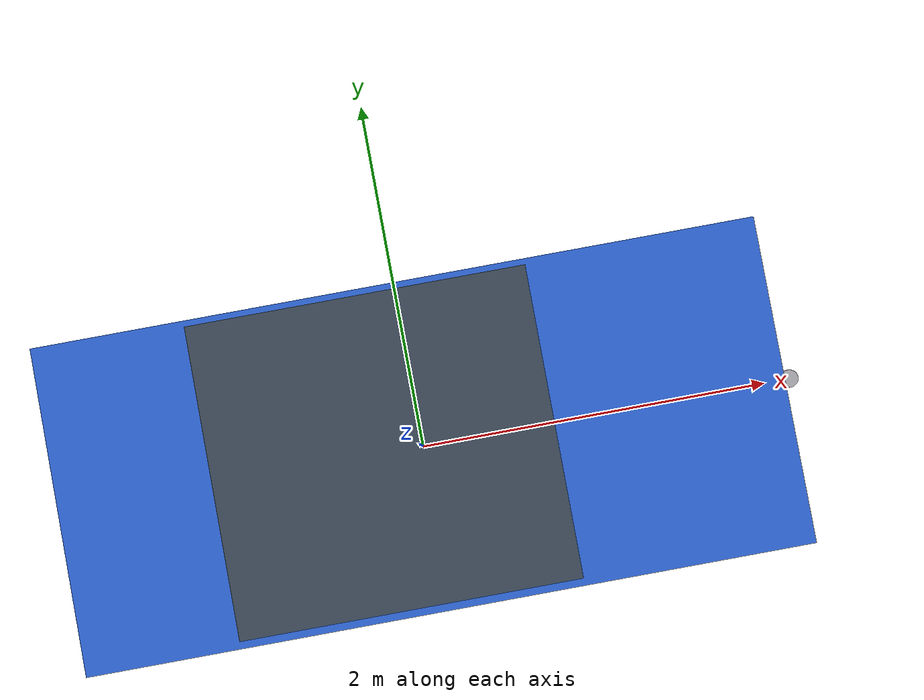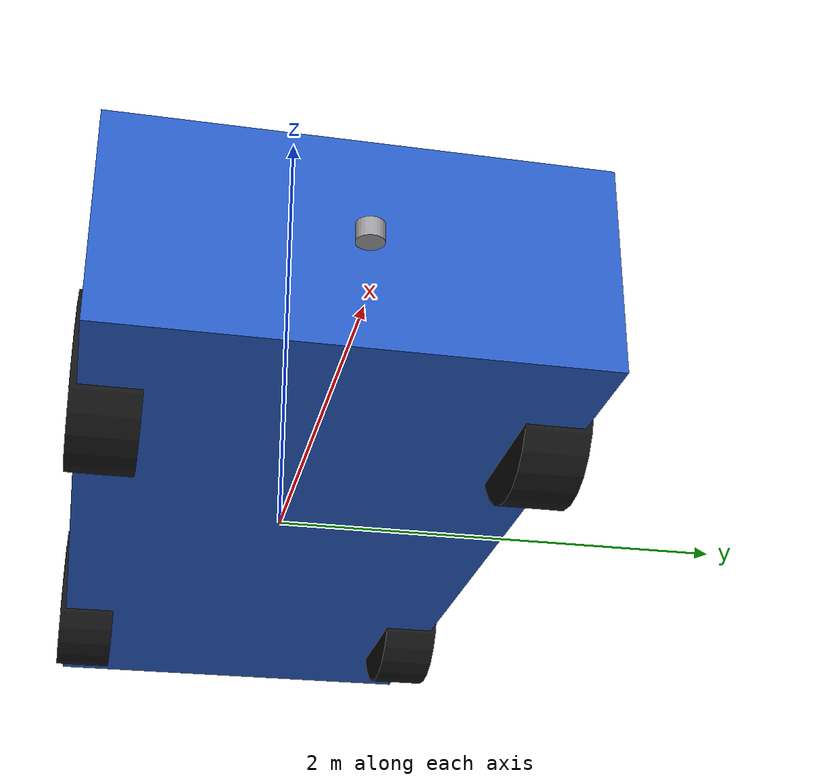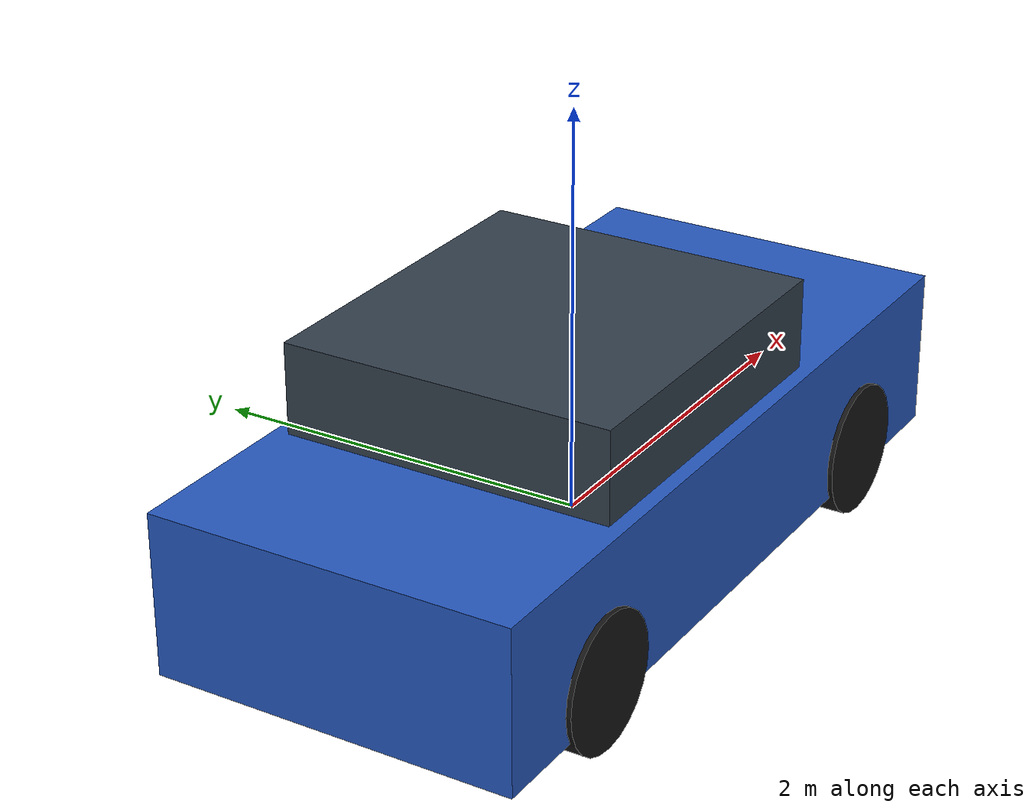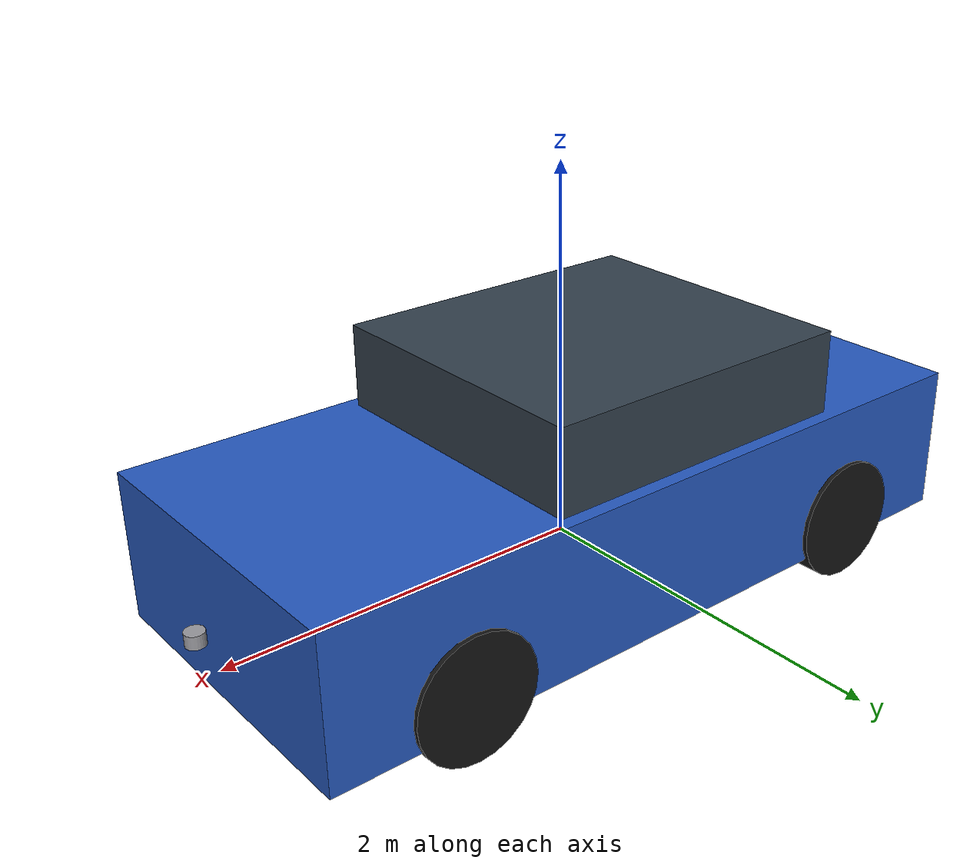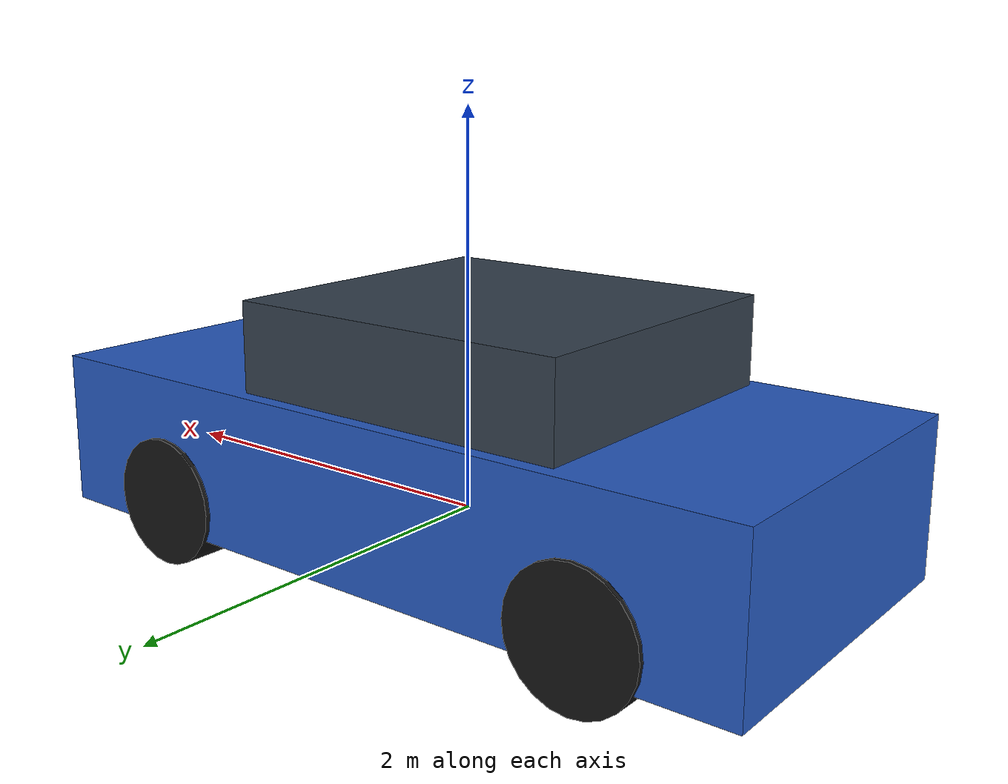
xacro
<?xml version="1.0"?>
<robot name="otonom_arac" xmlns:xacro="http://www.ros.org/wiki/xacro">

  <!-- ====================== PARAMETRELER ====================== -->
  <xacro:property name="govde_uzun"  value="4.00"/>
  <xacro:property name="govde_en"    value="1.80"/>
  <xacro:property name="govde_yuk"   value="0.80"/>
  <xacro:property name="govde_kutle" value="1200.0"/>

  <xacro:property name="dingil_mesafe" value="2.50"/>  <!-- on-arka aks -->
  <xacro:property name="iz_genislik"   value="1.60"/>  <!-- sol-sag teker -->

  <xacro:property name="teker_yaricap" value="0.33"/>
  <xacro:property name="teker_kalin"   value="0.25"/>
  <xacro:property name="teker_kutle"   value="20.0"/>

  <xacro:property name="direksiyon_kutle" value="5.0"/>
  <xacro:property name="maks_direksiyon"  value="0.60"/>  <!-- rad, ~34 derece -->

  <!-- Sensor yerlesimi: base_link aks hizasindadir, yani yerden
       teker_yaricap kadar yuksektedir. Yerden istenen yukseklige
       ulasmak icin aradaki fark dusulur. -->
  <xacro:property name="kamera_yer_yuk" value="1.30"/>
  <xacro:property name="lidar_yer_yuk"  value="0.55"/>
  <xacro:property name="lidar_ileri"    value="2.10"/>
  <!-- Gorus +-90 derece ile sinirli: daha genis acilarda isinlar geriye
       donup govdeye carpiyor. Ileri bakan otomotiv LiDAR'i zaten boyle. -->
  <xacro:property name="lidar_aci"      value="1.5708"/>
  <xacro:property name="kamera_ileri"   value="0.60"/>
  <xacro:property name="kamera_egim"    value="0.10"/>  <!-- rad, asagi -->

  <xacro:property name="PI" value="3.14159265359"/>

  <!-- ====================== MAKROLAR ====================== -->

  <!-- Kutu atalet tensoru -->
  <xacro:macro name="kutu_atalet" params="m x y z">
    <inertial>
      <mass value="${m}"/>
      <inertia ixx="${m*(y*y + z*z)/12.0}"
               iyy="${m*(x*x + z*z)/12.0}"
               izz="${m*(x*x + y*y)/12.0}"
               ixy="0" ixz="0" iyz="0"/>
    </inertial>
  </xacro:macro>

  <!-- Silindir atalet tensoru; donme ekseni z -->
  <xacro:macro name="silindir_atalet" params="m r h">
    <inertial>
      <mass value="${m}"/>
      <inertia ixx="${m*(3*r*r + h*h)/12.0}"
               iyy="${m*(3*r*r + h*h)/12.0}"
               izz="${m*r*r/2.0}"
               ixy="0" ixz="0" iyz="0"/>
    </inertial>
  </xacro:macro>

  <!-- Tekerlek govdesi + Gazebo surtunme ozellikleri.
       Onceki surumde mu1/mu2 hic tanimli degildi; Gazebo varsayilani
       kullaniliyor ve kayma ongorulemiyordu. -->
  <xacro:macro name="tekerlek_link" params="ad">
    <link name="${ad}">
      <visual>
        <origin rpy="${PI/2} 0 0"/>
        <geometry><cylinder radius="${teker_yaricap}" length="${teker_kalin}"/></geometry>
        <material name="lastik"/>
      </visual>
      <collision>
        <origin rpy="${PI/2} 0 0"/>
        <geometry><cylinder radius="${teker_yaricap}" length="${teker_kalin}"/></geometry>
      </collision>
      <xacro:silindir_atalet m="${teker_kutle}" r="${teker_yaricap}" h="${teker_kalin}"/>
    </link>

    <gazebo reference="${ad}">
      <mu1>1.2</mu1>
      <mu2>1.2</mu2>
      <kp>1e7</kp>
      <kd>1e3</kd>
      <minDepth>0.002</minDepth>
      <maxVel>10.0</maxVel>
      <material>Gazebo/DarkGrey</material>
    </gazebo>
  </xacro:macro>

  <!-- Arka tekerlek: dogrudan govdeye bagli, tahrikli -->
  <xacro:macro name="arka_tekerlek" params="ad y_isaret">
    <xacro:tekerlek_link ad="${ad}"/>
    <joint name="${ad}_joint" type="continuous">
      <parent link="base_link"/>
      <child  link="${ad}"/>
      <origin xyz="${-dingil_mesafe/2} ${y_isaret*iz_genislik/2} 0"/>
      <axis xyz="0 1 0"/>
      <limit effort="5000" velocity="100"/>
      <dynamics damping="0.1" friction="0.1"/>
    </joint>
  </xacro:macro>

  <!-- On tekerlek: once direksiyon mafsali, sonra donen tekerlek.
       Iki kademeli olmasi Ackermann'in sarti; tek continuous mafsal
       ile direksiyon kirilamaz. -->
  <xacro:macro name="on_tekerlek" params="ad y_isaret">
    <link name="${ad}_direksiyon">
      <xacro:kutu_atalet m="${direksiyon_kutle}" x="0.1" y="0.1" z="0.1"/>
    </link>
    <joint name="${ad}_direksiyon_joint" type="revolute">
      <parent link="base_link"/>
      <child  link="${ad}_direksiyon"/>
      <origin xyz="${dingil_mesafe/2} ${y_isaret*iz_genislik/2} 0"/>
      <axis xyz="0 0 1"/>
      <limit lower="${-maks_direksiyon}" upper="${maks_direksiyon}"
             effort="20000" velocity="10"/>
      <dynamics damping="1.0" friction="0.5"/>
    </joint>

    <xacro:tekerlek_link ad="${ad}"/>
    <joint name="${ad}_joint" type="continuous">
      <parent link="${ad}_direksiyon"/>
      <child  link="${ad}"/>
      <origin xyz="0 0 0"/>
      <axis xyz="0 1 0"/>
      <limit effort="5000" velocity="100"/>
      <dynamics damping="0.1" friction="0.1"/>
    </joint>
  </xacro:macro>

  <!-- ====================== MALZEMELER ====================== -->
  <material name="govde_rengi"><color rgba="0.15 0.35 0.75 1"/></material>
  <material name="lastik">     <color rgba="0.08 0.08 0.08 1"/></material>
  <material name="cam">        <color rgba="0.2 0.25 0.3 1"/></material>
  <material name="sensor">     <color rgba="0.6 0.6 0.62 1"/></material>

  <!-- ====================== GOVDE ====================== -->
  <link name="base_link">
    <visual>
      <origin xyz="0 0 ${govde_yuk/2 - 0.15}"/>
      <geometry><box size="${govde_uzun} ${govde_en} ${govde_yuk}"/></geometry>
      <material name="govde_rengi"/>
    </visual>
    <collision>
      <origin xyz="0 0 ${govde_yuk/2 - 0.15}"/>
      <geometry><box size="${govde_uzun} ${govde_en} ${govde_yuk}"/></geometry>
    </collision>
    <xacro:kutu_atalet m="${govde_kutle}"
                       x="${govde_uzun}" y="${govde_en}" z="${govde_yuk}"/>
  </link>
  <gazebo reference="base_link"><material>Gazebo/Blue</material></gazebo>

  <!-- Kabin: sadece gorsel, aracin yonunu gozle ayirt etmek icin -->
  <link name="kabin">
    <visual>
      <geometry><box size="1.8 1.65 0.6"/></geometry>
      <material name="cam"/>
    </visual>
    <!-- Sadece gorsel olsa da atalet sart: Gazebo ataleti olmayan
         link'i sifir kutleli sayip uyari veriyor. -->
    <xacro:kutu_atalet m="80.0" x="1.8" y="1.65" z="0.6"/>
  </link>
  <joint name="kabin_joint" type="fixed">
    <parent link="base_link"/>
    <child  link="kabin"/>
    <origin xyz="-0.2 0 ${govde_yuk - 0.15 + 0.15}"/>
  </joint>
  <gazebo reference="kabin"><material>Gazebo/SkyBlue</material></gazebo>

  <!-- ====================== TEKERLEKLER ====================== -->
  <xacro:arka_tekerlek ad="arka_sol"  y_isaret="1"/>
  <xacro:arka_tekerlek ad="arka_sag"  y_isaret="-1"/>
  <xacro:on_tekerlek   ad="on_sol"    y_isaret="1"/>
  <xacro:on_tekerlek   ad="on_sag"    y_isaret="-1"/>

  <link name="direksiyon_simidi">
    <xacro:silindir_atalet m="1.0" r="0.18" h="0.05"/>
  </link>
  <joint name="direksiyon_simidi_joint" type="revolute">
    <parent link="base_link"/>
    <child  link="direksiyon_simidi"/>
    <origin xyz="0.3 0.35 0.9" rpy="0 1.2 0"/>
    <axis xyz="0 0 1"/>
    <limit lower="-7.85" upper="7.85" effort="100" velocity="50"/>
  </joint>

  <!-- ====================== KAMERA ====================== -->
  <link name="kamera_link">
    <visual>
      <geometry><box size="0.08 0.12 0.06"/></geometry>
      <material name="sensor"/>
    </visual>
    <xacro:kutu_atalet m="0.5" x="0.08" y="0.12" z="0.06"/>
  </link>
  <joint name="kamera_joint" type="fixed">
    <parent link="base_link"/>
    <child  link="kamera_link"/>
    <origin xyz="${kamera_ileri} 0 ${kamera_yer_yuk - teker_yaricap}"
            rpy="0 ${kamera_egim} 0"/>
  </joint>

  <gazebo reference="kamera_link">
    <sensor name="arac_kamerasi" type="camera">
      <camera>
        <!-- FOV 1.047 (60 derece) idi; 1.40 (80 derece) serit
             cizgilerini viraj icinde de cerceve icinde tutuyor -->
        <horizontal_fov>1.40</horizontal_fov>
        <image><width>640</width><height>480</height><format>R8G8B8</format></image>
        <clip><near>0.1</near><far>150.0</far></clip>
      </camera>
      <always_on>true</always_on>
      <update_rate>30</update_rate>
      <plugin name="arac_kamera_driver" filename="libgazebo_ros_camera.so">
        <ros><namespace>arac</namespace></ros>
        <camera_name>kamera</camera_name>
        <frame_name>kamera_link</frame_name>
      </plugin>
    </sensor>
  </gazebo>

  <!-- ====================== IMU ====================== -->
  <link name="imu_link">
    <xacro:kutu_atalet m="0.1" x="0.04" y="0.04" z="0.02"/>
  </link>
  <joint name="imu_joint" type="fixed">
    <parent link="base_link"/>
    <child  link="imu_link"/>
    <origin xyz="0 0 0.1"/>
  </joint>

  <gazebo reference="imu_link">
    <sensor name="arac_imu" type="imu">
      <always_on>true</always_on>
      <update_rate>100</update_rate>
      <imu>
        <angular_velocity>
          <x><noise type="gaussian"><mean>0.0</mean><stddev>2e-4</stddev></noise></x>
          <y><noise type="gaussian"><mean>0.0</mean><stddev>2e-4</stddev></noise></y>
          <z><noise type="gaussian"><mean>0.0</mean><stddev>2e-4</stddev></noise></z>
        </angular_velocity>
        <linear_acceleration>
          <x><noise type="gaussian"><mean>0.0</mean><stddev>1.7e-2</stddev></noise></x>
          <y><noise type="gaussian"><mean>0.0</mean><stddev>1.7e-2</stddev></noise></y>
          <z><noise type="gaussian"><mean>0.0</mean><stddev>1.7e-2</stddev></noise></z>
        </linear_acceleration>
      </imu>
      <plugin name="arac_imu_driver" filename="libgazebo_ros_imu_sensor.so">
        <ros>
          <namespace>arac</namespace>
          <remapping>~/out:=imu</remapping>
        </ros>
        <frame_name>imu_link</frame_name>
      </plugin>
    </sensor>
  </gazebo>

  <!-- ====================== 2D LIDAR ====================== -->
  <link name="lidar_link">
    <visual>
      <geometry><cylinder radius="0.05" length="0.07"/></geometry>
      <material name="sensor"/>
    </visual>
    <xacro:silindir_atalet m="0.8" r="0.05" h="0.07"/>
  </link>
  <joint name="lidar_joint" type="fixed">
    <parent link="base_link"/>
    <child  link="lidar_link"/>
    <origin xyz="${lidar_ileri} 0 ${lidar_yer_yuk - teker_yaricap}"/>
  </joint>

  <gazebo reference="lidar_link">
    <sensor name="arac_lidar" type="ray">
      <always_on>true</always_on>
      <update_rate>15</update_rate>
      <visualize>false</visualize>
      <ray>
        <scan>
          <horizontal>
            <samples>540</samples>
            <resolution>1</resolution>
            <min_angle>${-lidar_aci}</min_angle>
            <max_angle>${lidar_aci}</max_angle>
          </horizontal>
        </scan>
        <range>
          <min>0.3</min>
          <max>60.0</max>
          <resolution>0.02</resolution>
        </range>
        <noise><type>gaussian</type><mean>0.0</mean><stddev>0.01</stddev></noise>
      </ray>
      <plugin name="arac_lidar_driver" filename="libgazebo_ros_ray_sensor.so">
        <ros>
          <namespace>arac</namespace>
          <remapping>~/out:=scan</remapping>
        </ros>
        <output_type>sensor_msgs/LaserScan</output_type>
        <frame_name>lidar_link</frame_name>
      </plugin>
    </sensor>
  </gazebo>

  <!-- ====================== SURUS ====================== -->
  <gazebo>
    <plugin name="ackermann_surus" filename="libgazebo_ros_ackermann_drive.so">
      <ros>
        <namespace>arac</namespace>
        <remapping>cmd_vel:=cmd_vel</remapping>
        <remapping>odom:=odom</remapping>
        <remapping>distance:=mesafe</remapping>
      </ros>

      <update_rate>100.0</update_rate>

      <front_left_joint>on_sol_joint</front_left_joint>
      <front_right_joint>on_sag_joint</front_right_joint>
      <rear_left_joint>arka_sol_joint</rear_left_joint>
      <rear_right_joint>arka_sag_joint</rear_right_joint>
      <left_steering_joint>on_sol_direksiyon_joint</left_steering_joint>
      <right_steering_joint>on_sag_direksiyon_joint</right_steering_joint>
      <steering_wheel_joint>direksiyon_simidi_joint</steering_wheel_joint>

      <max_steer>${maks_direksiyon}</max_steer>
      <max_steering_angle>7.85</max_steering_angle>
      <max_speed>20.0</max_speed>

      <!-- 1200 kg'lik bir govde icin kazanclar demo degerlerinin
           cok uzerinde olmali; dusuk kazancla direksiyon komutu
           takip edemiyor. -->
      <left_steering_pid_gain>20000 0 2000</left_steering_pid_gain>
      <left_steering_i_range>0 0</left_steering_i_range>
      <right_steering_pid_gain>20000 0 2000</right_steering_pid_gain>
      <right_steering_i_range>0 0</right_steering_i_range>
      <linear_velocity_pid_gain>5000 0 200</linear_velocity_pid_gain>
      <linear_velocity_i_range>0 0</linear_velocity_i_range>

      <publish_odom>true</publish_odom>
      <publish_odom_tf>true</publish_odom_tf>
      <publish_wheel_tf>true</publish_wheel_tf>
      <publish_distance>true</publish_distance>

      <odometry_frame>odom</odometry_frame>
      <robot_base_frame>base_link</robot_base_frame>
    </plugin>
  </gazebo>

</robot>
